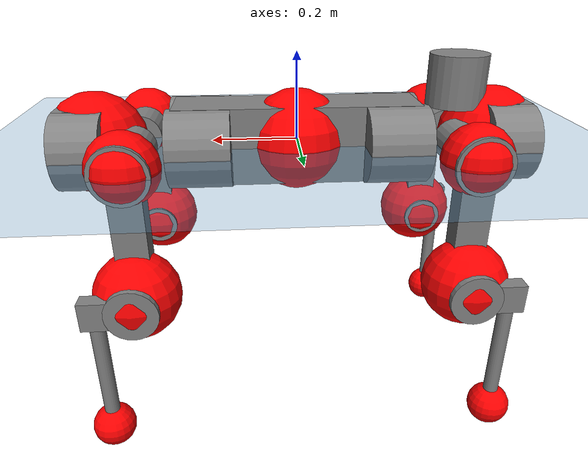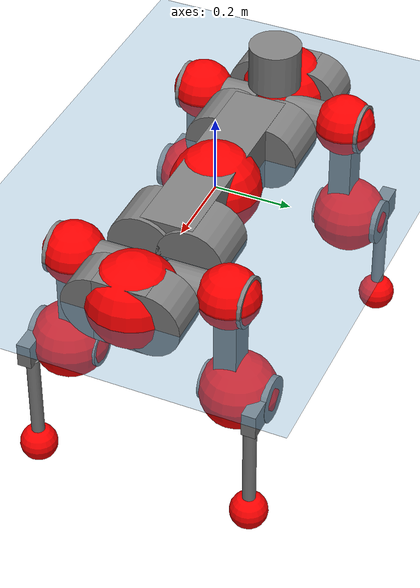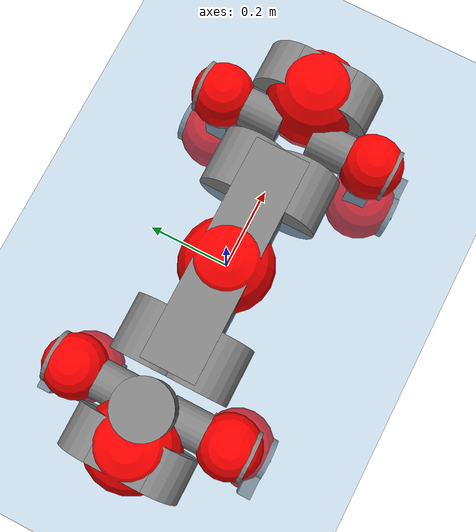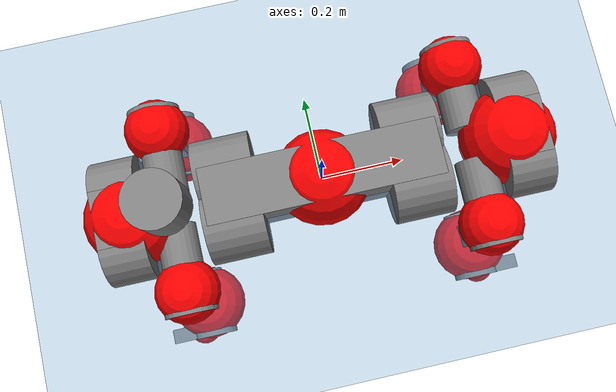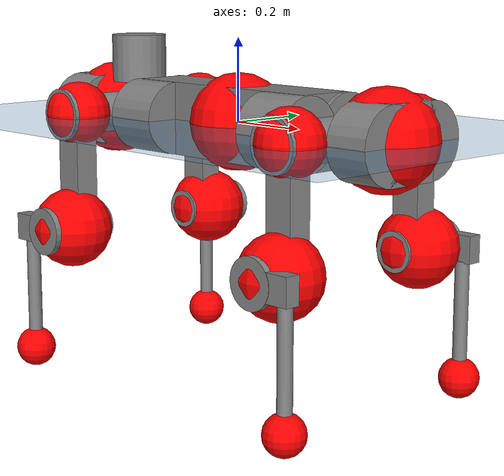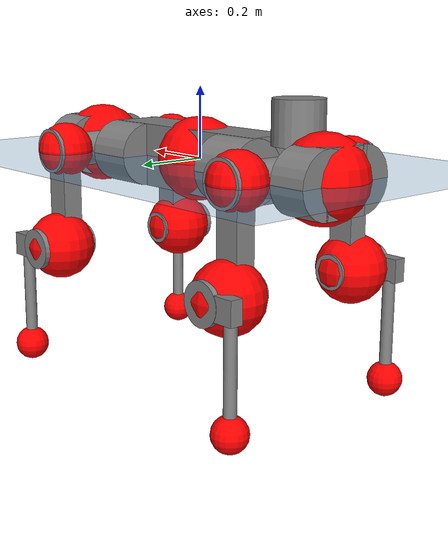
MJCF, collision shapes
<mujoco model="anymal_c">
  <compiler angle="radian" assetdir="assets" balanceinertia="true" inertiafromgeom="false"/>

  <option timestep="0.005" density="1.2" viscosity="2e-05"/>

  <size nkey="1"/>

  <visual>
    <quality shadowsize="8192"/>
    <map shadowclip="0.5"/>
  </visual>

  <default>
    <default class="/">
      <material specular="0" shininess="0.25"/>
      <geom contype="0" conaffinity="0" group="1" solref="-1000 -80"/>
      <site size="0.01 0.005 0.005" group="5"/>
      <general forcelimited="true" forcerange="-80 80" biastype="affine" gainprm="80" biasprm="0 -80 -2"/>
      <default class="anymal_c">
        <joint armature="0.01" damping="0.01" frictionloss="0.1"/>
        <default class="visual">
          <geom type="mesh" group="2"/>
          <default class="visual_zflip"/>
        </default>
        <default class="collision">
          <geom type="cylinder" group="3"/>
          <default class="foot">
            <geom size="0.03 0 0" type="sphere" condim="6" priority="1" friction="0.8 0.02 0.01" solimp="0.015 1 0.03"/>
          </default>
        </default>
      </default>
      <default class="reward_collision_sphere">
        <geom group="5" rgba="1 0 0 1"/>
      </default>
    </default>
  </default>

  <asset>
    <texture type="skybox" colorspace="auto" name="//unnamed_texture_0" builtin="gradient" rgb1="0.95 0.95 0.95" rgb2="0.95 0.95 0.95" width="100" height="600"/>
    <texture type="2d" colorspace="auto" name="texplane" builtin="checker" rgb1="0.345 0.575 0.748" rgb2="0.345 0.575 0.748" markrgb="1 1 1" width="512" height="512"/>
    <texture type="2d" colorspace="linear" name="base" file="base.png"/>
    <texture type="2d" colorspace="linear" name="top_shell" file="top_shell.png"/>
    <texture type="2d" colorspace="linear" name="bottom_shell" file="bottom_shell.png"/>
    <texture type="2d" colorspace="linear" name="remote" file="remote.png"/>
    <texture type="2d" colorspace="linear" name="hatch" file="hatch.png"/>
    <texture type="2d" colorspace="linear" name="handle" file="handle.png"/>
    <texture type="2d" colorspace="linear" name="face" file="face.png"/>
    <texture type="2d" colorspace="linear" name="battery" file="battery.png"/>
    <texture type="2d" colorspace="linear" name="lidar_cage" file="lidar_cage.png"/>
    <texture type="2d" colorspace="linear" name="depth_camera" file="depth_camera.png"/>
    <texture type="2d" colorspace="linear" name="wide_angle_camera" file="wide_angle_camera.png"/>
    <texture type="2d" colorspace="linear" name="lidar" file="lidar.png"/>
    <texture type="2d" colorspace="linear" name="drive" file="drive.png"/>
    <texture type="2d" colorspace="linear" name="hip_l" file="hip_l.png"/>
    <texture type="2d" colorspace="linear" name="shank_l" file="shank_l.png"/>
    <texture type="2d" colorspace="linear" name="foot" file="foot.png"/>
    <texture type="2d" colorspace="linear" name="thigh" file="thigh.png"/>
    <texture type="2d" colorspace="linear" name="shank_r" file="shank_r.png"/>
    <texture type="2d" colorspace="linear" name="hip_r" file="hip_r.png"/>
    <material name="MatPlane" class="/" texture="texplane" texuniform="true" texrepeat="2 2" specular="0.9" shininess="0.5"/>
    <material name="black_plastic" class="/" rgba="0.007 0.007 0.007 1"/>
    <material name="green" class="/" rgba="0.052 0.178 0.033 1"/>
    <material name="red" class="/" rgba="0.178 0.006 0.005 1"/>
    <material name="yellow" class="/" rgba="0.178 0.119 0.006 1"/>
    <material name="lwl" class="/" rgba="0.8 0.8 0.8 1"/>
    <material name="base" class="/" texture="base"/>
    <material name="top_shell" class="/" texture="top_shell"/>
    <material name="bottom_shell" class="/" texture="bottom_shell"/>
    <material name="hip_l" class="/" texture="hip_l"/>
    <material name="thigh" class="/" texture="thigh"/>
    <material name="shank_l" class="/" texture="shank_l"/>
    <material name="foot" class="/" texture="foot"/>
    <material name="hip_r" class="/" texture="hip_r"/>
    <material name="shank" class="/" texture="shank_r"/>
    <material name="hatch" class="/" texture="hatch"/>
    <material name="remote" class="/" texture="remote"/>
    <material name="handle" class="/" texture="handle"/>
    <material name="face" class="/" texture="face"/>
    <material name="depth_camera" class="/" texture="depth_camera"/>
    <material name="wide_angle_camera" class="/" texture="wide_angle_camera"/>
    <material name="battery" class="/" texture="battery"/>
    <material name="lidar_cage" class="/" texture="lidar_cage"/>
    <material name="lidar" class="/" texture="lidar"/>
    <material name="drive" class="/" texture="drive"/>
    <mesh name="base_0" class="/" file="base_0.obj"/>
    <mesh name="base_1" class="/" file="base_1.obj"/>
    <mesh name="base_2" class="/" file="base_2.obj"/>
    <mesh name="base_3" class="/" file="base_3.obj"/>
    <mesh name="base_4" class="/" file="base_4.obj"/>
    <mesh name="base_5" class="/" file="base_5.obj"/>
    <mesh name="top_shell" class="/" file="top_shell.obj"/>
    <mesh name="bottom_shell" class="/" file="bottom_shell.obj"/>
    <mesh name="remote" class="/" file="remote.obj"/>
    <mesh name="handle" class="/" file="handle.obj"/>
    <mesh name="face" class="/" file="face.obj"/>
    <mesh name="wide_angle_camera" class="/" file="wide_angle_camera.obj"/>
    <mesh name="depth_camera" class="/" file="depth_camera.obj"/>
    <mesh name="battery" class="/" file="battery.obj"/>
    <mesh name="lidar_cage" class="/" file="lidar_cage.obj"/>
    <mesh name="lidar" class="/" file="lidar.obj"/>
    <mesh name="drive" class="/" file="drive.obj"/>
    <mesh name="hip_l" class="/" file="hip_l.obj"/>
    <mesh name="thigh" class="/" file="thigh.obj"/>
    <mesh name="shank_l" class="/" file="shank_l.obj"/>
    <mesh name="foot" class="/" file="foot.obj"/>
    <mesh name="hip_r" class="/" file="hip_r.obj"/>
    <mesh name="hatch" class="/" file="hatch.obj"/>
    <mesh name="shank_r" class="/" file="shank_r.obj"/>
  </asset>

  <worldbody>
    <geom name="floor" class="/" size="100 100 0.125" type="plane" group="0" material="MatPlane"/>
    <light name="toplight_shadow" class="/" pos="0 0 5" dir="0.0990148 0.0990148 -0.990148" type="directional" ambient="0.04 0.04 0.04" diffuse="0.55 0.55 0.55" specular="0.12 0.12 0.12"/>
    <light name="toplight_fill" class="/" pos="0 0 5" dir="0.0990148 0.0990148 -0.990148" type="directional" castshadow="false" ambient="0.04 0.04 0.04" diffuse="0.3 0.3 0.3" specular="0.08 0.08 0.08"/>
    <body name="trunk" childclass="anymal_c" pos="0.000562448 0.000293926 0.000565978" quat="1 2.26277e-05 1.34665e-05 -1.98307e-06">
      <inertial pos="0.00202741 -0.00029013 0.0484511" quat="0.500478 0.501183 0.498533 0.499802" mass="17.8796" diaginertia="0.750572 0.40163 0.210239"/>
      <joint name="//unnamed_joint_0" type="free" armature="0" damping="0" frictionloss="0"/>
      <geom name="//unnamed_geom_1" class="visual" material="green" mesh="base_0"/>
      <geom name="//unnamed_geom_2" class="visual" material="yellow" mesh="base_1"/>
      <geom name="//unnamed_geom_3" class="visual" material="red" mesh="base_2"/>
      <geom name="//unnamed_geom_4" class="visual" material="black_plastic" mesh="base_3"/>
      <geom name="//unnamed_geom_5" class="visual" material="lwl" mesh="base_4"/>
      <geom name="//unnamed_geom_6" class="visual" material="base" mesh="base_5"/>
      <geom name="trunk_1" class="collision" size="0.284076 0.0685702 0.0881616" type="box"/>
      <geom name="trunk_2" class="collision" size="0.0881616 0.0710191" pos="0.224366 0.0640388 0" quat="0.707107 0 0.707107 0"/>
      <geom name="trunk_3" class="collision" size="0.0881616 0.0710191" pos="-0.224366 0.0640388 0" quat="0.707107 0 0.707107 0"/>
      <geom name="trunk_4" class="collision" size="0.0881616 0.0710191" pos="0.224366 -0.0640388 0" quat="0.707107 0 0.707107 0"/>
      <geom name="trunk_5" class="collision" size="0.0881616 0.0710191" pos="-0.224366 -0.0640388 0" quat="0.707107 0 0.707107 0"/>
      <geom name="//unnamed_geom_12" class="visual" material="top_shell" mesh="top_shell"/>
      <geom name="//unnamed_geom_13" class="visual" material="bottom_shell" mesh="bottom_shell"/>
      <geom name="//unnamed_geom_14" class="visual" material="remote" mesh="remote"/>
      <geom name="//unnamed_geom_15" class="visual" material="handle" mesh="handle"/>
      <geom name="//unnamed_geom_16" class="visual" pos="0.427584 0 0" quat="1 0 0 0" material="face" mesh="face"/>
      <geom name="trunk_6" class="collision" size="0.0538766 0.0685702 0.0881616" pos="0.48432 0 0" type="box"/>
      <geom name="//unnamed_geom_18" class="collision" size="0.0881616 0.0538766" pos="0.48432 0.0640388 0" quat="0.707107 0 0.707107 0"/>
      <geom name="//unnamed_geom_19" class="collision" size="0.0881616 0.0538766" pos="0.48432 -0.0640388 0" quat="0.707107 0 0.707107 0"/>
      <geom name="//unnamed_geom_20" class="visual" pos="0.476221 0 -0.0286773" quat="0.965926 0 0.258819 0" material="depth_camera" mesh="depth_camera"/>
      <geom name="//unnamed_geom_21" class="visual" pos="0.529193 0 0.014855" material="wide_angle_camera" mesh="wide_angle_camera"/>
      <geom name="//unnamed_geom_22" class="visual_zflip" pos="-0.427584 0 0" quat="0 0 0 1" material="face" mesh="face"/>
      <geom name="trunk_7" class="collision" size="0.0538766 0.0685702 0.0881616" pos="-0.48432 0 0" quat="0 0 0 1" type="box"/>
      <geom name="//unnamed_geom_24" class="collision" size="0.0881616 0.0538766" pos="-0.48432 -0.0640388 0" quat="0 -0.707107 0 0.707107"/>
      <geom name="//unnamed_geom_25" class="collision" size="0.0881616 0.0538766" pos="-0.48432 0.0640388 0" quat="0 -0.707107 0 0.707107"/>
      <geom name="//unnamed_geom_26" class="visual" pos="-0.476221 0 -0.0286773" quat="0 -0.258819 0 0.965926" material="depth_camera" mesh="depth_camera"/>
      <geom name="//unnamed_geom_27" class="visual_zflip" pos="-0.529193 0 0.014855" quat="0 0 0 1" material="wide_angle_camera" mesh="wide_angle_camera"/>
      <geom name="//unnamed_geom_28" class="visual" material="battery" mesh="battery"/>
      <geom name="//unnamed_geom_29" class="visual" pos="0 0.0684153 0.0291251" quat="0.683013 -0.183013 0.183013 0.683013" material="depth_camera" mesh="depth_camera"/>
      <geom name="//unnamed_geom_30" class="visual" pos="0 -0.0684153 0.0291251" quat="0.683013 0.183013 0.183013 -0.683013" material="depth_camera" mesh="depth_camera"/>
      <geom name="//unnamed_geom_31" class="visual" pos="-0.37549 0 0.0729353" quat="1 0 0 0" material="lidar_cage" mesh="lidar_cage"/>
      <geom name="trunk_8" class="collision" size="0.0685702 0.0587744" pos="-0.37549 0 0.132474"/>
      <geom name="//unnamed_geom_33" class="visual" pos="-0.37549 -4.58586e-05 0.141107" quat="0.707107 0 0 -0.707107" material="lidar" mesh="lidar"/>
      <geom name="//unnamed_geom_34" class="visual" pos="0.309367 0.0951708 -1.33649e-09" quat="0.258819 0.965926 0 0" material="drive" mesh="drive"/>
      <geom name="//unnamed_geom_35" class="visual" pos="0.309367 -0.0951708 1.33649e-09" quat="0.258819 -0.965926 0 0" material="drive" mesh="drive"/>
      <geom name="//unnamed_geom_36" class="visual" pos="-0.309367 0.0951708 1.33649e-09" quat="0 0 0.965926 -0.258819" material="drive" mesh="drive"/>
      <geom name="//unnamed_geom_37" class="visual" pos="-0.309367 -0.0951708 -1.33649e-09" quat="0 0 -0.965926 -0.258819" material="drive" mesh="drive"/>
      <geom name="//unnamed_geom_38" class="visual" pos="0.119662 0 0.0724391" quat="1 0 0 0" material="hatch" mesh="hatch"/>
      <geom name="//unnamed_geom_39" class="reward_collision_sphere" size="0.117549"/>
      <geom name="//unnamed_geom_40" class="reward_collision_sphere" size="0.117549" pos="0.464205 0 0"/>
      <geom name="//unnamed_geom_41" class="reward_collision_sphere" size="0.117549" pos="-0.464205 0 0"/>
      <site name="imu" pos="0.258131 0.0037525 0.0454301" size="0.00979574"/>
      <camera name="track" pos="0 -1.82968 0" quat="0.707107 0.707107 0 0" mode="trackcom"/>
      <camera name="ego_camera" pos="0.464205 0 -0.0396927" quat="-0.5 -0.5 0.5 0.5"/>
      <body name="LF_HIP" pos="0.309718 0.0946773 0.000142095" quat="0.258816 0.965927 5.87841e-05 -0.000156866">
        <inertial pos="0.0589879 -0.0129561 -0.00821107" quat="-0.128663 0.709867 -0.134402 0.679316" mass="2.64785" diaginertia="0.00693346 0.00314215 0.00316721"/>
        <joint name="LF_HAA" pos="0 0 0" axis="0.999987 0.00339452 0.00386693" stiffness="0.000451314" range="-0.711377 0.490135" armature="0.00974729" damping="0.00679451" frictionloss="0.0982739"/>
        <geom name="//unnamed_geom_42" class="visual" pos="0 -7.86195e-05 1.29132e-05" quat="0.258819 -0.965926 0 0" material="hip_l" mesh="hip_l"/>
        <geom name="//unnamed_geom_43" class="visual" pos="0.0617908 -0.0733633 -0.0429294" quat="0.183013 -0.683013 0.683013 0.183013" material="drive" mesh="drive"/>
        <geom name="//unnamed_geom_44" class="collision" size="0.0489787 0.0685702" pos="0.0617908 -0.0109413 -0.00685194" quat="-0.353553 -0.612372 0.612372 -0.353553"/>
        <body name="LF_THIGH" pos="0.0613563 -0.0669833 -0.0427807" quat="0.183094 -0.683063 0.682911 0.183123">
          <inertial pos="0.0311798 0.000971179 -0.243746" quat="0.993163 -0.00510774 -0.0805175 0.0843742" mass="2.92346" diaginertia="0.0353855 0.0192649 0.0041003"/>
          <joint name="LF_HFE" pos="0 0 0" axis="1 -0.000255391 -0.000374066" range="-3.1489 3.13653" armature="0.00981862" damping="0.00986017" frictionloss="0.0977421"/>
          <geom name="//unnamed_geom_45" class="visual" pos="0.00232239 3.65955e-06 0" quat="0.707107 0 0 -0.707107" material="thigh" mesh="thigh"/>
          <geom name="//unnamed_geom_46" class="collision" size="0.0636723 0.039183" pos="0.0412626 0 0" quat="0.5 0.5 -0.5 -0.5"/>
          <geom name="//unnamed_geom_47" class="collision" size="0.036734 0.0293872 0.138427" pos="0.030947 0 -0.140228" quat="0.707107 0 0 -0.707107" type="box"/>
          <geom name="//unnamed_geom_48" class="visual" pos="0.103466 0 -0.28281" quat="1 0 0 0" material="drive" mesh="drive"/>
          <geom name="//unnamed_geom_49" class="collision" size="0.0489787 0.0685702" pos="0.0312564 0 -0.28281" quat="0.707107 0 0.707107 0"/>
          <geom name="//unnamed_geom_50" class="reward_collision_sphere" size="0.0783659" pos="0.0257891 0 0"/>
          <body name="LF_SHANK" pos="0.103527 -0.000285678 -0.283352" quat="1 -0.000367275 -0.000175039 -4.99727e-05">
            <inertial pos="0.00613778 -0.0559034 -0.0809339" quat="0.992832 -0.116802 -0.000941445 -0.0253181" mass="0.55357" diaginertia="0.0121002 0.00590586 0.00109006"/>
            <joint name="LF_KFE" pos="0 0 0" axis="0.999997 0.00254599 0.000520676" range="-3.13999 3.13518" armature="0.00949384" damping="0.00939157" frictionloss="0.0943758"/>
            <geom name="//unnamed_geom_51" class="visual" pos="0.000757282 0.00403787 0" quat="0.707107 0 0 -0.707107" material="shank_l" mesh="shank_l"/>
            <geom name="LF_kfe_act" class="collision" size="0.0587744 0.0195915" pos="0.0206313 0 0" quat="0.5 0.5 -0.5 -0.5"/>
            <geom name="//unnamed_geom_53" class="collision" size="0.0563245 0.0330606 0.0186119" pos="0.0206313 -0.0526023 0" quat="0.5 0.5 -0.5 -0.5" type="box"/>
            <geom name="//unnamed_geom_54" class="visual" pos="0.0134617 -0.0791589 -0.335373" quat="0.382683 0 0 -0.92388" material="foot" mesh="foot"/>
            <geom name="LF_calf" class="collision" size="0.0171425 0.138367" pos="0.0134619 -0.0804601 -0.167687" quat="0.707107 0 0 -0.707107"/>
            <geom name="LF_foot" class="foot" size="0.0303333" pos="0.0134619 -0.0804601 -0.313046" quat="0.707107 0 0 -0.707107"/>
            <geom name="//unnamed_geom_57" class="reward_collision_sphere" size="0.0979574" pos="-0.0515783 0 0"/>
            <geom name="//unnamed_geom_58" class="reward_collision_sphere" size="0.0489787" pos="0.0134619 -0.0804601 -0.313046"/>
            <site name="LF_foot" class="foot" pos="0.0134619 -0.0804601 -0.313046" quat="0.707107 0 0 -0.707107" size="0.00979574"/>
          </body>
        </body>
      </body>
      <body name="RF_HIP" pos="0.31011 -0.0957236 0.00033806" quat="0.258519 -0.966006 -7.15994e-05 -7.92684e-05">
        <inertial pos="0.0578333 0.0146657 -0.00830311" quat="0.136819 0.679623 0.129142 0.709024" mass="2.62517" diaginertia="0.00697589 0.00318474 0.00323257"/>
        <joint name="RF_HAA" pos="0 0 0" axis="0.999987 -0.00284544 -0.00426584" range="-0.490466 0.720383" armature="0.00994898" damping="0.0076946" frictionloss="0.0999021"/>
        <geom name="//unnamed_geom_59" class="visual" pos="0 7.86189e-05 1.29132e-05" quat="0.258819 0.965926 0 0" material="hip_r" mesh="hip_r"/>
        <geom name="//unnamed_geom_60" class="visual" pos="0.0617908 0.0733633 -0.0429294" quat="0.183013 0.683013 0.683013 -0.183013" material="drive" mesh="drive"/>
        <geom name="//unnamed_geom_61" class="collision" size="0.0489787 0.0685702" pos="0.0617908 0.0109413 -0.00685194" quat="-0.353553 0.612372 0.612372 0.353553"/>
        <body name="RF_THIGH" pos="0.0620271 0.0659495 -0.0418546" quat="0.182923 0.683089 0.683013 -0.182816">
          <inertial pos="0.0310361 0.000618174 -0.243293" quat="0.993275 -0.00532927 -0.0773117 0.086015" mass="2.87717" diaginertia="0.0357294 0.0192633 0.00403355"/>
          <joint name="RF_HFE" pos="0 0 0" axis="1 -0.000355329 0.000222698" stiffness="0.000789455" range="-3.14422 3.12808" armature="0.00981296" damping="0.00759064" frictionloss="0.0958171"/>
          <geom name="//unnamed_geom_62" class="visual" pos="0.00232239 3.65955e-06 0" quat="0.707107 0 0 -0.707107" material="thigh" mesh="thigh"/>
          <geom name="//unnamed_geom_63" class="collision" size="0.0636723 0.039183" pos="0.0412626 0 0" quat="0.5 0.5 0.5 0.5"/>
          <geom name="//unnamed_geom_64" class="collision" size="0.036734 0.0293872 0.138427" pos="0.030947 0 -0.140228" quat="0.707107 0 0 0.707107" type="box"/>
          <geom name="//unnamed_geom_65" class="visual" pos="0.103466 0 -0.28281" quat="1 0 0 0" material="drive" mesh="drive"/>
          <geom name="//unnamed_geom_66" class="collision" size="0.0489787 0.0685702" pos="0.0312564 0 -0.28281" quat="0.707107 0 0.707107 0"/>
          <geom name="//unnamed_geom_67" class="reward_collision_sphere" size="0.0783659" pos="0.0257891 0 0"/>
          <body name="RF_SHANK" pos="0.103327 0.000714295 -0.282449" quat="1 7.71044e-05 -4.41932e-05 1.9503e-05">
            <inertial pos="0.00597035 0.0558045 -0.0796862" quat="0.993025 0.115117 -0.000918827 0.0254848" mass="0.553945" diaginertia="0.0118811 0.00592473 0.00108779"/>
            <joint name="RF_KFE" pos="0 0 0" axis="1 0.000517823 -0.000800123" range="-3.14003 3.12047" armature="0.00977742" damping="0.00472729" frictionloss="0.0991434"/>
            <geom name="//unnamed_geom_68" class="visual" pos="0.000757278 -0.00403786 0" quat="0.707107 0 0 0.707107" material="shank" mesh="shank_r"/>
            <geom name="RF_kfe_act" class="collision" size="0.0587744 0.0195915" pos="0.0206313 0 0" quat="0.5 0.5 0.5 0.5"/>
            <geom name="//unnamed_geom_70" class="collision" size="0.0563245 0.0330606 0.0186119" pos="0.0206313 0.0526023 0" quat="0.5 0.5 0.5 0.5" type="box"/>
            <geom name="//unnamed_geom_71" class="visual" pos="0.0134621 0.0791589 -0.335373" quat="0.382683 0 0 0.92388" material="foot" mesh="foot"/>
            <geom name="RF_calf" class="collision" size="0.0171425 0.138367" pos="0.0134619 0.0804601 -0.167687" quat="0.707107 0 0 0.707107"/>
            <geom name="RF_foot" class="foot" size="0.0297316" pos="0.0134619 0.0804601 -0.313046" quat="0.707107 0 0 0.707107"/>
            <geom name="//unnamed_geom_74" class="reward_collision_sphere" size="0.0979574" pos="-0.0515783 0 0"/>
            <geom name="//unnamed_geom_75" class="reward_collision_sphere" size="0.0489787" pos="0.0134619 0.0804601 -0.313046"/>
            <site name="RF_foot" class="foot" pos="0.0134619 0.0804601 -0.313046" quat="0.707107 0 0 0.707107" size="0.00979574"/>
          </body>
        </body>
      </body>
      <body name="LH_HIP" pos="-0.30882 0.095432 0.00103398" quat="-6.66367e-06 6.58578e-06 0.965925 -0.258821">
        <inertial pos="0.0584493 0.0139752 -0.00752789" quat="0.135051 0.679308 0.131314 0.709266" mass="2.63331" diaginertia="0.00685956 0.00316479 0.00318172"/>
        <joint name="LH_HAA" pos="0 0 0" axis="1 -0.000452352 0.000239844" range="-0.496736 0.738442" armature="0.010037" damping="0.00764811" frictionloss="0.097165"/>
        <geom name="//unnamed_geom_76" class="visual" pos="0 7.86189e-05 1.29132e-05" quat="-0.258819 -0.965926 0 0" material="hip_r" mesh="hip_r"/>
        <geom name="//unnamed_geom_77" class="visual" pos="0.0617908 0.0733633 -0.0429294" quat="0.183013 0.683013 0.683013 -0.183013" material="drive" mesh="drive"/>
        <geom name="//unnamed_geom_78" class="collision" size="0.0489787 0.0685702" pos="0.0617908 0.0109413 -0.00685194" quat="-0.353553 0.612372 0.612372 0.353553"/>
        <body name="LH_THIGH" pos="0.0613245 0.0669153 -0.0422215" quat="0.182776 0.682997 0.683103 -0.18297">
          <inertial pos="0.0318101 -0.00018577 -0.243334" quat="0.992772 -0.00513905 -0.0806709 0.0887156" mass="2.90952" diaginertia="0.0354694 0.0193204 0.00400239"/>
          <joint name="LH_HFE" pos="0 0 0" axis="0.999989 0.00402734 -0.00250687" range="-3.14609 3.13368" armature="0.00941848" damping="0.0130447" frictionloss="0.0981417"/>
          <geom name="//unnamed_geom_79" class="visual" pos="0.00232239 3.65955e-06 0" quat="0.707107 0 0 -0.707107" material="thigh" mesh="thigh"/>
          <geom name="//unnamed_geom_80" class="collision" size="0.0636723 0.039183" pos="0.0412626 0 0" quat="0.5 0.5 -0.5 -0.5"/>
          <geom name="//unnamed_geom_81" class="collision" size="0.036734 0.0293872 0.138427" pos="0.030947 0 -0.140228" quat="0.707107 0 0 -0.707107" type="box"/>
          <geom name="//unnamed_geom_82" class="visual" pos="0.103466 0 -0.28281" quat="1 0 0 0" material="drive" mesh="drive"/>
          <geom name="//unnamed_geom_83" class="collision" size="0.0489787 0.0685702" pos="0.0312564 0 -0.28281" quat="0.707107 0 0.707107 0"/>
          <geom name="//unnamed_geom_84" class="reward_collision_sphere" size="0.0783659" pos="0.0257891 0 0"/>
          <body name="LH_SHANK" pos="0.103564 -0.00069869 -0.283104" quat="1 -3.59962e-05 3.12758e-05 -1.09339e-05">
            <inertial pos="0.00560053 0.0563592 -0.0803083" quat="0.993087 0.114328 -0.00428641 0.026253" mass="0.554179" diaginertia="0.0120061 0.00591236 0.0010723"/>
            <joint name="LH_KFE" pos="0 0 0" axis="1 -5.7504e-05 -0.000226269" range="-3.14638 3.13191" armature="0.00942184" damping="0.0131685" frictionloss="0.0994731"/>
            <geom name="//unnamed_geom_85" class="visual" pos="0.000757278 -0.00403786 0" quat="-0.707107 0 0 -0.707107" material="shank" mesh="shank_r"/>
            <geom name="LH_kfe_act" class="collision" size="0.0587744 0.0195915" pos="0.0206313 0 0" quat="0.5 0.5 -0.5 -0.5"/>
            <geom name="//unnamed_geom_87" class="collision" size="0.0563245 0.0330606 0.0186119" pos="0.0206313 0.0526023 0" quat="0.5 0.5 -0.5 -0.5" type="box"/>
            <geom name="//unnamed_geom_88" class="visual" pos="0.0134621 0.0791589 -0.335373" quat="-0.382683 0 0 -0.92388" material="foot" mesh="foot"/>
            <geom name="LH_calf" class="collision" size="0.0171425 0.138367" pos="0.0134619 0.0804601 -0.167687" quat="0.707107 0 0 -0.707107"/>
            <geom name="LH_foot" class="foot" size="0.0303803" pos="0.0134619 0.0804601 -0.313046" quat="0.707107 0 0 -0.707107"/>
            <geom name="//unnamed_geom_91" class="reward_collision_sphere" size="0.0979574" pos="-0.0515783 0 0"/>
            <geom name="//unnamed_geom_92" class="reward_collision_sphere" size="0.0489787" pos="0.0134619 0.0804601 -0.313046"/>
            <site name="LH_foot" class="foot" pos="0.0134619 0.0804601 -0.313046" quat="0.707107 0 0 -0.707107" size="0.00979574"/>
          </body>
        </body>
      </body>
      <body name="RH_HIP" pos="-0.309067 -0.0945078 0.000714621" quat="-1.00779e-06 -0.000226171 -0.96596 -0.258692">
        <inertial pos="0.0587951 -0.0148393 -0.0087658" quat="-0.124514 0.709847 -0.133256 0.680335" mass="2.61575" diaginertia="0.00682891 0.00315202 0.0031795"/>
        <joint name="RH_HAA" pos="0 0 0" axis="0.999993 -0.000925782 0.00364373" range="-0.721718 0.497187" armature="0.0100861" damping="0.0102387" frictionloss="0.0999157"/>
        <geom name="//unnamed_geom_93" class="visual" pos="0 -7.86195e-05 1.29132e-05" quat="-0.258819 0.965926 0 0" material="hip_l" mesh="hip_l"/>
        <geom name="//unnamed_geom_94" class="visual" pos="0.0617908 -0.0733633 -0.0429294" quat="-0.183013 0.683013 -0.683013 -0.183013" material="drive" mesh="drive"/>
        <geom name="//unnamed_geom_95" class="collision" size="0.0489787 0.0685702" pos="0.0617908 -0.0109413 -0.00685194" quat="0.353553 0.612372 -0.612372 0.353553"/>
        <body name="RH_THIGH" pos="0.0611696 -0.0656876 -0.0420803" quat="-0.183025 0.683008 -0.683013 -0.183017">
          <inertial pos="0.0321107 -0.000188788 -0.24363" quat="0.993158 -0.00519998 -0.081032 0.0839271" mass="2.89936" diaginertia="0.0352129 0.0189498 0.00402239"/>
          <joint name="RH_HFE" pos="0 0 0" axis="1 7.34355e-05 -0.000239206" range="-3.14257 3.13764" armature="0.00990175" damping="0.00890204" frictionloss="0.0999952"/>
          <geom name="//unnamed_geom_96" class="visual" pos="0.00232239 3.65955e-06 0" quat="0.707107 0 0 -0.707107" material="thigh" mesh="thigh"/>
          <geom name="//unnamed_geom_97" class="collision" size="0.0636723 0.039183" pos="0.0412626 0 0" quat="0.5 0.5 0.5 0.5"/>
          <geom name="//unnamed_geom_98" class="collision" size="0.036734 0.0293872 0.138427" pos="0.030947 0 -0.140228" quat="0.707107 0 0 0.707107" type="box"/>
          <geom name="//unnamed_geom_99" class="visual" pos="0.103466 0 -0.28281" quat="1 0 0 0" material="drive" mesh="drive"/>
          <geom name="//unnamed_geom_100" class="collision" size="0.0489787 0.0685702" pos="0.0312564 0 -0.28281" quat="0.707107 0 0.707107 0"/>
          <geom name="//unnamed_geom_101" class="reward_collision_sphere" size="0.0783659" pos="0.0257891 0 0"/>
          <body name="RH_SHANK" pos="0.102943 7.74734e-05 -0.284187" quat="1 -2.07893e-05 -2.86293e-05 1.05735e-05">
            <inertial pos="0.0064857 -0.0558452 -0.080231" quat="0.992758 -0.117522 0.0023793 -0.024783" mass="0.554708" diaginertia="0.0118467 0.00592757 0.00106907"/>
            <joint name="RH_KFE" pos="0 0 0" axis="0.999989 -0.00259007 0.00403024" range="-3.13736 3.13469" armature="0.00958633" damping="0.00722466" frictionloss="0.0959328"/>
            <geom name="//unnamed_geom_102" class="visual" pos="0.000757282 0.00403787 0" quat="0.707107 0 0 -0.707107" material="shank_l" mesh="shank_l"/>
            <geom name="RH_kfe_act" class="collision" size="0.0587744 0.0195915" pos="0.0206313 0 0" quat="0.5 0.5 0.5 0.5"/>
            <geom name="//unnamed_geom_104" class="collision" size="0.0563245 0.0330606 0.0186119" pos="0.0206313 -0.0526023 0" quat="0.5 0.5 0.5 0.5" type="box"/>
            <geom name="//unnamed_geom_105" class="visual" pos="0.0134617 -0.0791589 -0.335373" quat="0.382683 0 0 -0.92388" material="foot" mesh="foot"/>
            <geom name="RH_calf" class="collision" size="0.0171425 0.138367" pos="0.0134619 -0.0804601 -0.167687" quat="0.707107 0 0 0.707107"/>
            <geom name="RH_foot" class="foot" size="0.0272095" pos="0.0134619 -0.0804601 -0.313046" quat="0.707107 0 0 0.707107"/>
            <geom name="//unnamed_geom_108" class="reward_collision_sphere" size="0.0979574" pos="-0.0515783 0 0"/>
            <geom name="//unnamed_geom_109" class="reward_collision_sphere" size="0.0489787" pos="0.0134619 -0.0804601 -0.313046"/>
            <site name="RH_foot" class="foot" pos="0.0134619 -0.0804601 -0.313046" quat="0.707107 0 0 0.707107" size="0.00979574"/>
          </body>
        </body>
      </body>
    </body>
  </worldbody>

  <contact>
    <pair class="/" geom1="floor" geom2="LF_foot" name="//unnamed_contact_0"/>
    <pair class="/" geom1="floor" geom2="RF_foot" name="//unnamed_contact_1"/>
    <pair class="/" geom1="floor" geom2="LH_foot" name="//unnamed_contact_2"/>
    <pair class="/" geom1="floor" geom2="RH_foot" name="//unnamed_contact_3"/>
  </contact>

  <actuator>
    <general name="LF_HAA" class="/" joint="LF_HAA" forcerange="-78.9081 78.9081" gainprm="78.9602" biasprm="0 -78.9602 -1.89096"/>
    <general name="LF_HFE" class="/" joint="LF_HFE" forcerange="-80.6421 80.6421" gainprm="78.9602" biasprm="0 -78.9602 -1.89096"/>
    <general name="LF_KFE" class="/" joint="LF_KFE" forcerange="-79.3441 79.3441" gainprm="78.9602" biasprm="0 -78.9602 -1.89096"/>
    <general name="RF_HAA" class="/" joint="RF_HAA" forcerange="-78.5247 78.5247" gainprm="78.9602" biasprm="0 -78.9602 -1.89096"/>
    <general name="RF_HFE" class="/" joint="RF_HFE" forcerange="-76.8857 76.8857" gainprm="78.9602" biasprm="0 -78.9602 -1.89096"/>
    <general name="RF_KFE" class="/" joint="RF_KFE" forcerange="-78.6773 78.6773" gainprm="78.9602" biasprm="0 -78.9602 -1.89096"/>
    <general name="LH_HAA" class="/" joint="LH_HAA" forcerange="-79.8831 79.8831" gainprm="78.9602" biasprm="0 -78.9602 -1.89096"/>
    <general name="LH_HFE" class="/" joint="LH_HFE" forcerange="-80.1538 80.1538" gainprm="78.9602" biasprm="0 -78.9602 -1.89096"/>
    <general name="LH_KFE" class="/" joint="LH_KFE" forcerange="-79.1622 79.1622" gainprm="78.9602" biasprm="0 -78.9602 -1.89096"/>
    <general name="RH_HAA" class="/" joint="RH_HAA" forcerange="-81.154 81.154" gainprm="78.9602" biasprm="0 -78.9602 -1.89096"/>
    <general name="RH_HFE" class="/" joint="RH_HFE" forcerange="-79.1583 79.1583" gainprm="78.9602" biasprm="0 -78.9602 -1.89096"/>
    <general name="RH_KFE" class="/" joint="RH_KFE" forcerange="-78.7483 78.7483" gainprm="78.9602" biasprm="0 -78.9602 -1.89096"/>
  </actuator>

  <sensor>
    <gyro site="imu" name="imu_angular_velocity"/>
    <velocimeter site="imu" name="imu_linear_velocity"/>
    <framelinvel objtype="site" objname="LF_foot" name="LF_foot_global_linear_velocity"/>
    <framelinvel objtype="site" objname="RF_foot" name="RF_foot_global_linear_velocity"/>
    <framelinvel objtype="site" objname="LH_foot" name="LH_foot_global_linear_velocity"/>
    <framelinvel objtype="site" objname="RH_foot" name="RH_foot_global_linear_velocity"/>
  </sensor>

  <keyframe>
    <key name="home" qpos="0 0 0.55 1 0 0 0 0 0.4 -0.8 0 -0.4 0.8 0 -0.4 0.8 0 0.4 -0.8"/>
  </keyframe>
</mujoco>
